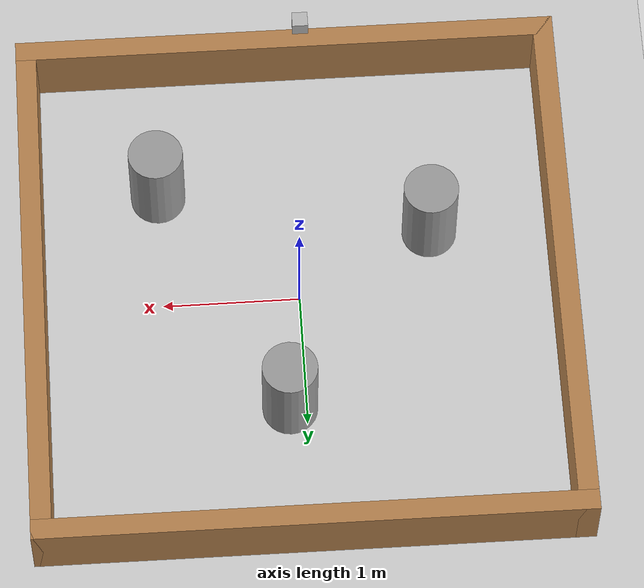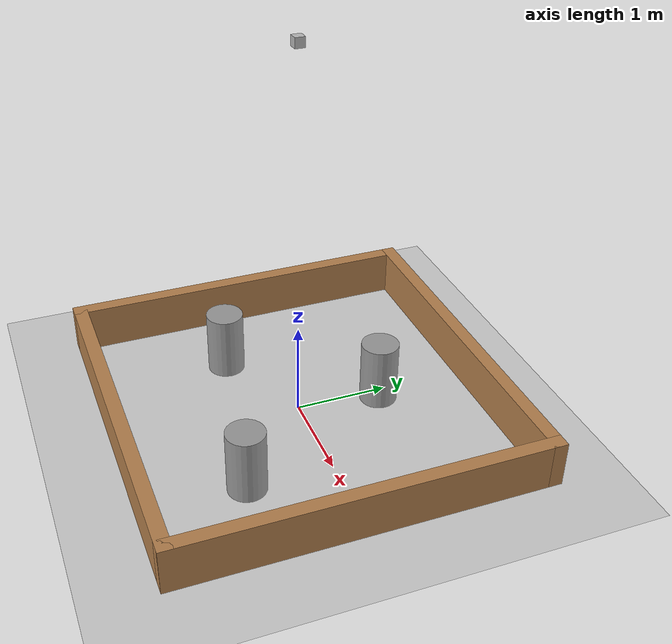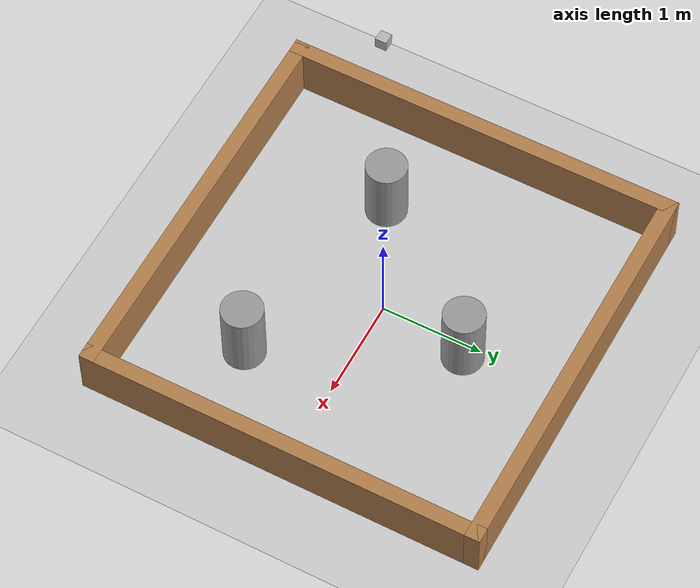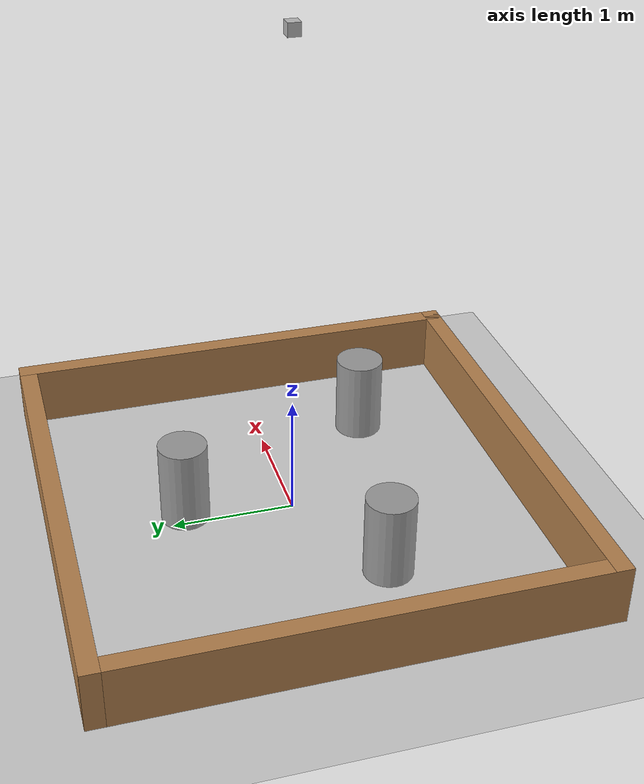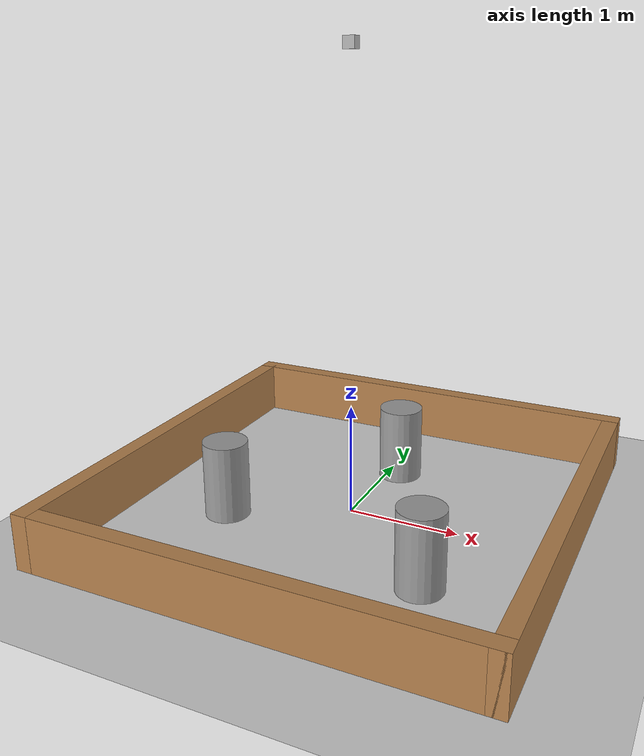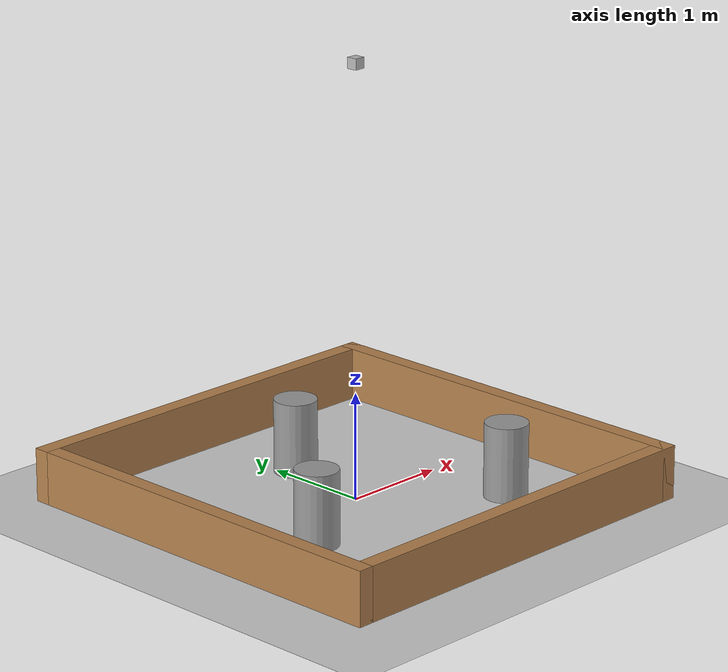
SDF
<sdf version="1.6">
 <world name="default">
  <light name="sun" type="directional">
   <pose>0 0 15 0 -0 0</pose>
   <diffuse>0.8 0.8 0.8 1</diffuse>
   <specular>0.2 0.2 0.2 1</specular>
   <attenuation>
    <range>1000</range>
    <constant>0.9</constant>
    <linear>0.01</linear>
    <quadratic>0.001</quadratic>
   </attenuation>
   <direction>-0.5 0.1 -0.9</direction>
  </light>
  <model name="camera">
   <static>true</static>
   <pose>0 0 4 0 1.57 0</pose>
   <link name="link">
    <visual name="visual"><geometry><box><size>0.1 0.1 0.1</size></box></geometry></visual>
    <sensor name="my_camera" type="camera">
     <camera>
      <save enabled="true"><path>/home/catkin_ws/src/rl_cheap/src/project_videos</path></save>
      <horizontal_fov>1.047</horizontal_fov>
      <image><width>1080</width><height>1080</height></image>
      <clip><near>0.1</near><far>100</far></clip>
     </camera>
     <always_on>1</always_on>
     <update_rate>60</update_rate>
    </sensor>
   </link>
  </model>
  <model name="ground_plane">
   <static>1</static>
   <link name="link">
    <collision name="collision">
     <geometry><plane><normal>0 0 1</normal><size>100 100</size></plane></geometry>
     <surface><friction><ode><mu>100</mu><mu2>50</mu2></ode></friction></surface>
    </collision>
    <visual name="visual">
     <cast_shadows>0</cast_shadows>
     <geometry><plane><normal>0 0 1</normal><size>100 100</size></plane></geometry>
     <material>
      <script><uri>file://media/materials/scripts/gazebo.material</uri><name>Gazebo/Grey</name></script>
     </material>
    </visual>
   </link>
  </model>
  <physics name="default_physics" default="0" type="ode">
   <real_time_update_rate>1000</real_time_update_rate>
   <max_step_size>0.001</max_step_size>
   <real_time_factor>1</real_time_factor>
   <ode>
    <solver>
     <type>quick</type>
     <iters>150</iters>
     <precon_iters>0</precon_iters>
     <sor>1.4</sor>
     <use_dynamic_moi_rescaling>1</use_dynamic_moi_rescaling>
    </solver>
    <constraints>
     <cfm>1e-05</cfm>
     <erp>0.2</erp>
     <contact_max_correcting_vel>2000</contact_max_correcting_vel>
     <contact_surface_layer>0.01</contact_surface_layer>
    </constraints>
   </ode>
  </physics>
  <model name="turtlebot3_square">
   <link name="Wall_0">
    <collision name="Wall_0_Collision">
     <geometry><box><size>4 0.15 0.5</size></box></geometry>
     <pose>0 0 0.25 0 -0 0</pose>
    </collision>
    <visual name="Wall_0_Visual">
     <pose>0 0 0.25 0 -0 0</pose>
     <geometry><box><size>4 0.15 0.5</size></box></geometry>
     <material>
      <script><uri>file://media/materials/scripts/gazebo.material</uri><name>Gazebo/Wood</name></script>
      <ambient>1 1 1 1</ambient>
     </material>
    </visual>
    <pose>0 1.925 0 0 -0 0</pose>
   </link>
   <link name="Wall_2">
    <collision name="Wall_2_Collision">
     <geometry><box><size>4 0.15 0.5</size></box></geometry>
     <pose>0 0 0.25 0 -0 0</pose>
    </collision>
    <visual name="Wall_2_Visual">
     <pose>0 0 0.25 0 -0 0</pose>
     <geometry><box><size>4 0.15 0.5</size></box></geometry>
     <material>
      <script><uri>file://media/materials/scripts/gazebo.material</uri><name>Gazebo/Wood</name></script>
      <ambient>1 1 1 1</ambient>
     </material>
    </visual>
    <pose>-1.925 0 0 0 0 -1.5708</pose>
   </link>
   <link name="Wall_3">
    <collision name="Wall_3_Collision">
     <geometry><box><size>4 0.15 0.5</size></box></geometry>
     <pose>0 0 0.25 0 -0 0</pose>
    </collision>
    <visual name="Wall_3_Visual">
     <pose>0 0 0.25 0 -0 0</pose>
     <geometry><box><size>4 0.15 0.5</size></box></geometry>
     <material>
      <script><uri>file://media/materials/scripts/gazebo.material</uri><name>Gazebo/Wood</name></script>
      <ambient>1 1 1 1</ambient>
     </material>
    </visual>
    <pose>0 -1.925 0 0 -0 0</pose>
   </link>
   <link name="Wall_4">
    <collision name="Wall_4_Collision">
     <geometry><box><size>4 0.15 0.5</size></box></geometry>
     <pose>0 0 0.25 0 -0 0</pose>
    </collision>
    <visual name="Wall_4_Visual">
     <pose>0 0 0.25 0 -0 0</pose>
     <geometry><box><size>4 0.15 0.5</size></box></geometry>
     <material>
      <script><uri>file://media/materials/scripts/gazebo.material</uri><name>Gazebo/Wood</name></script>
      <ambient>1 1 1 1</ambient>
     </material>
    </visual>
    <pose>1.925 0 0 0 -0 1.5708</pose>
   </link>
   <static>1</static>
  </model>
  <scene><ambient>0.4 0.4 0.4 1</ambient><background>0.7 0.7 0.7 1</background><shadows>1</shadows></scene>
  <gravity>0 0 -9.8</gravity>
  <magnetic_field>6e-06 2.3e-05 -4.2e-05</magnetic_field>
  <atmosphere type="adiabatic"/>
  <spherical_coordinates>
   <surface_model>EARTH_WGS84</surface_model>
   <latitude_deg>0</latitude_deg>
   <longitude_deg>0</longitude_deg>
   <elevation>0</elevation>
   <heading_deg>0</heading_deg>
  </spherical_coordinates>
  <model name="cylinder_1">
   <link name="link_3">
    <inertial>
     <mass>1</mass>
     <inertia><ixx>0.145833</ixx><ixy>0</ixy><ixz>0</ixz><iyy>0.145833</iyy><iyz>0</iyz><izz>0.125</izz></inertia>
    </inertial>
    <visual name="visual">
     <geometry><cylinder><radius>0.2</radius><length>0.7</length></cylinder></geometry>
     <material>
      <lighting>1</lighting>
      <script><uri>file://media/materials/scripts/gazebo.material</uri><name>Gazebo/Grey</name></script>
      <shader type="pixel"><normal_map>__default__</normal_map></shader>
      <ambient>0 0 0 1</ambient>
      <diffuse>0.7 0.7 0.7 1</diffuse>
      <specular>0.01 0.01 0.01 1</specular>
      <emissive>0 0 0 1</emissive>
     </material>
    </visual>
    <collision name="collision">
     <geometry><cylinder><radius>0.2</radius><length>0.7</length></cylinder></geometry>
     <surface>
      <friction>
       <ode><mu>1</mu><mu2>1</mu2><fdir1>0 0 0</fdir1><slip1>0</slip1><slip2>0</slip2></ode>
       <torsional>
        <coefficient>1</coefficient>
        <patch_radius>0</patch_radius>
        <surface_radius>0</surface_radius>
        <use_patch_radius>1</use_patch_radius>
        <ode><slip>0</slip></ode>
       </torsional>
      </friction>
      <bounce><restitution_coefficient>0</restitution_coefficient><threshold>1e+06</threshold></bounce>
      <contact>
       <collide_without_contact>0</collide_without_contact>
       <collide_without_contact_bitmask>1</collide_without_contact_bitmask>
       <collide_bitmask>1</collide_bitmask>
       <ode>
        <soft_cfm>0</soft_cfm>
        <soft_erp>0.2</soft_erp>
        <kp>1e+13</kp>
        <kd>1</kd>
        <max_vel>0.01</max_vel>
        <min_depth>0</min_depth>
       </ode>
       <bullet>
        <split_impulse>1</split_impulse>
        <split_impulse_penetration_threshold>-0.01</split_impulse_penetration_threshold>
        <soft_cfm>0</soft_cfm>
        <soft_erp>0.2</soft_erp>
        <kp>1e+13</kp>
        <kd>1</kd>
       </bullet>
      </contact>
     </surface>
    </collision>
   </link>
   <static>0</static>
   <pose>0.999228 -0.892735 0.349998 2e-06 1e-06 0</pose>
  </model>
  <model name="cylinder_2">
   <link name="link_3">
    <inertial>
     <mass>1</mass>
     <inertia><ixx>0.145833</ixx><ixy>0</ixy><ixz>0</ixz><iyy>0.145833</iyy><iyz>0</iyz><izz>0.125</izz></inertia>
    </inertial>
    <visual name="visual">
     <geometry><cylinder><radius>0.2</radius><length>0.7</length></cylinder></geometry>
     <material>
      <lighting>1</lighting>
      <script><uri>file://media/materials/scripts/gazebo.material</uri><name>Gazebo/Grey</name></script>
      <shader type="pixel"><normal_map>__default__</normal_map></shader>
      <ambient>0 0 0 1</ambient>
      <diffuse>0.7 0.7 0.7 1</diffuse>
      <specular>0.01 0.01 0.01 1</specular>
      <emissive>0 0 0 1</emissive>
     </material>
    </visual>
    <collision name="collision">
     <geometry><cylinder><radius>0.2</radius><length>0.7</length></cylinder></geometry>
     <surface>
      <friction>
       <ode><mu>1</mu><mu2>1</mu2><fdir1>0 0 0</fdir1><slip1>0</slip1><slip2>0</slip2></ode>
       <torsional>
        <coefficient>1</coefficient>
        <patch_radius>0</patch_radius>
        <surface_radius>0</surface_radius>
        <use_patch_radius>1</use_patch_radius>
        <ode><slip>0</slip></ode>
       </torsional>
      </friction>
      <bounce><restitution_coefficient>0</restitution_coefficient><threshold>1e+06</threshold></bounce>
      <contact>
       <collide_without_contact>0</collide_without_contact>
       <collide_without_contact_bitmask>1</collide_without_contact_bitmask>
       <collide_bitmask>1</collide_bitmask>
       <ode>
        <soft_cfm>0</soft_cfm>
        <soft_erp>0.2</soft_erp>
        <kp>1e+13</kp>
        <kd>1</kd>
        <max_vel>0.01</max_vel>
        <min_depth>0</min_depth>
       </ode>
       <bullet>
        <split_impulse>1</split_impulse>
        <split_impulse_penetration_threshold>-0.01</split_impulse_penetration_threshold>
        <soft_cfm>0</soft_cfm>
        <soft_erp>0.2</soft_erp>
        <kp>1e+13</kp>
        <kd>1</kd>
       </bullet>
      </contact>
     </surface>
    </collision>
   </link>
   <static>0</static>
   <pose>-0.984782 -0.494785 0.349998 2e-06 1e-06 0</pose>
  </model>
  <model name="cylinder_3">
   <link name="link_3">
    <inertial>
     <mass>1</mass>
     <inertia><ixx>0.145833</ixx><ixy>0</ixy><ixz>0</ixz><iyy>0.145833</iyy><iyz>0</iyz><izz>0.125</izz></inertia>
    </inertial>
    <visual name="visual">
     <geometry><cylinder><radius>0.2</radius><length>0.7</length></cylinder></geometry>
     <material>
      <lighting>1</lighting>
      <script><uri>file://media/materials/scripts/gazebo.material</uri><name>Gazebo/Grey</name></script>
      <shader type="pixel"><normal_map>__default__</normal_map></shader>
      <ambient>0 0 0 1</ambient>
      <diffuse>0.7 0.7 0.7 1</diffuse>
      <specular>0.01 0.01 0.01 1</specular>
      <emissive>0 0 0 1</emissive>
     </material>
    </visual>
    <collision name="collision">
     <geometry><cylinder><radius>0.2</radius><length>0.7</length></cylinder></geometry>
     <surface>
      <friction>
       <ode><mu>1</mu><mu2>1</mu2><fdir1>0 0 0</fdir1><slip1>0</slip1><slip2>0</slip2></ode>
       <torsional>
        <coefficient>1</coefficient>
        <patch_radius>0</patch_radius>
        <surface_radius>0</surface_radius>
        <use_patch_radius>1</use_patch_radius>
        <ode><slip>0</slip></ode>
       </torsional>
      </friction>
      <bounce><restitution_coefficient>0</restitution_coefficient><threshold>1e+06</threshold></bounce>
      <contact>
       <collide_without_contact>0</collide_without_contact>
       <collide_without_contact_bitmask>1</collide_without_contact_bitmask>
       <collide_bitmask>1</collide_bitmask>
       <ode>
        <soft_cfm>0</soft_cfm>
        <soft_erp>0.2</soft_erp>
        <kp>1e+13</kp>
        <kd>1</kd>
        <max_vel>0.01</max_vel>
        <min_depth>0</min_depth>
       </ode>
       <bullet>
        <split_impulse>1</split_impulse>
        <split_impulse_penetration_threshold>-0.01</split_impulse_penetration_threshold>
        <soft_cfm>0</soft_cfm>
        <soft_erp>0.2</soft_erp>
        <kp>1e+13</kp>
        <kd>1</kd>
       </bullet>
      </contact>
     </surface>
    </collision>
   </link>
   <static>0</static>
   <pose>0.119728 0.875786 0.349998 2e-06 1e-06 0</pose>
  </model>
 </world>
</sdf>
